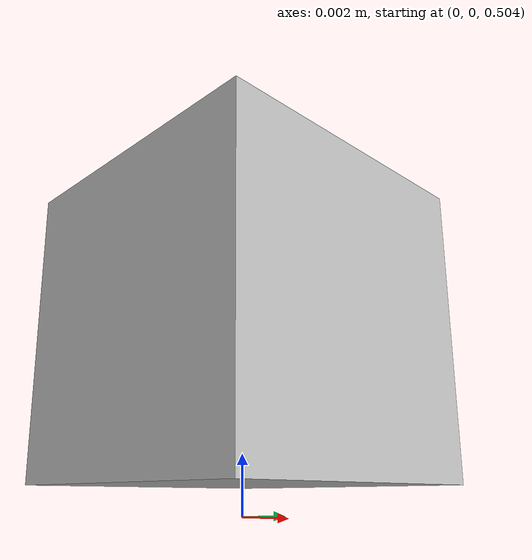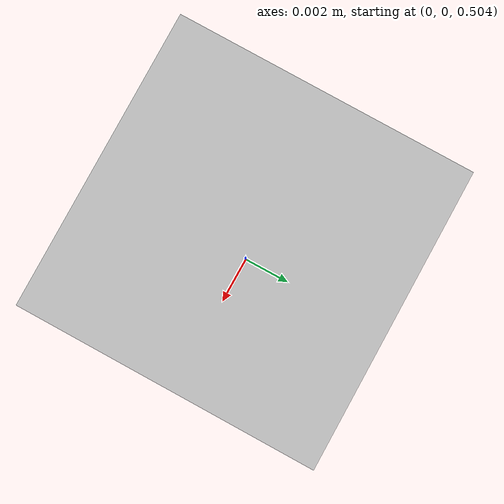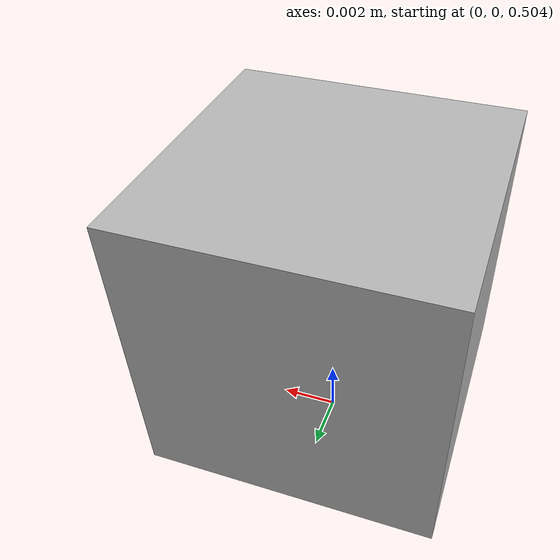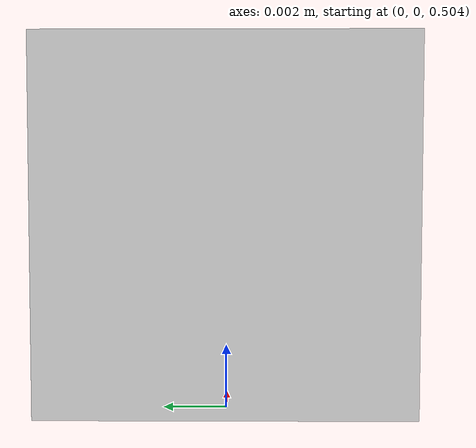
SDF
<?xml version="1.0" ?>
<sdf version='1.6'>

    <model name="wall">
    <gravity>false</gravity>
    <pose>0 0 0.51 0 0 0</pose>
    <link name="link_1">
      <inertial>
        <mass>1.0</mass>
        <inertia> <!-- inertias are tricky to compute -->
          <!-- http://gazebosim.org/tutorials?tut=inertia&cat=build_robot -->
          <ixx>0.000017</ixx>       <!-- for a box: ixx = 0.083 * mass * (y*y + z*z) -->
          <ixy>0.0</ixy>         <!-- for a box: ixy = 0 -->
          <ixz>0.0</ixz>         <!-- for a box: ixz = 0 -->
          <iyy>0.000017</iyy>       <!-- for a box: iyy = 0.083 * mass * (x*x + z*z) -->
          <iyz>0.0</iyz>         <!-- for a box: iyz = 0 -->
          <izz>0.000017</izz>       <!-- for a box: izz = 0.083 * mass * (x*x + y*y) -->
        </inertia>
      </inertial>
      <collision name="collision">
        <geometry>
          <box>
            <size>0.01 0.01 0.01</size>
          </box>
        </geometry>
      </collision>
      <visual name="visual">
        <geometry>
          <box>
            <size>0.01 0.01 0.01</size>
          </box>
        </geometry>
      </visual>
    </link>

    <!-- working joint -->
    <joint name="ft_sensor" type="fixed">
      <parent>world</parent>
      <child>link_1</child>
      <pose>0 0 0.0 0 0 0</pose>
      <dynamics damping="0.1"/>
      <disableFixedJointLumping>true</disableFixedJointLumping>
      <preserveFixedJoint>true</preserveFixedJoint>
      <sensor name="force_torque" type="force_torque">
        <update_rate>30</update_rate>
        <always_on>true</always_on>
        <visualize>true</visualize>
        <force_torque>
          <frame>child</frame>
          <measure_direction>child_to_parent</measure_direction>
        </force_torque>
        <plugin name='force_torque' filename='libgazebo_yarp_forcetorque.so'>
          <yarpConfigurationFile>model://wall/conf/gazebo_ft.ini</yarpConfigurationFile>
        </plugin>
      </sensor>
      <physics>
        <ode>
        </ode>
        <provide_feedback>true</provide_feedback>
      </physics>
    </joint>

  </model>
</sdf>
